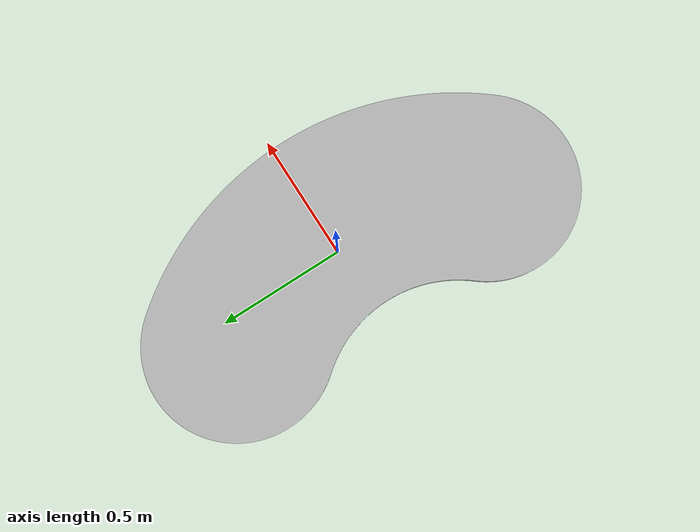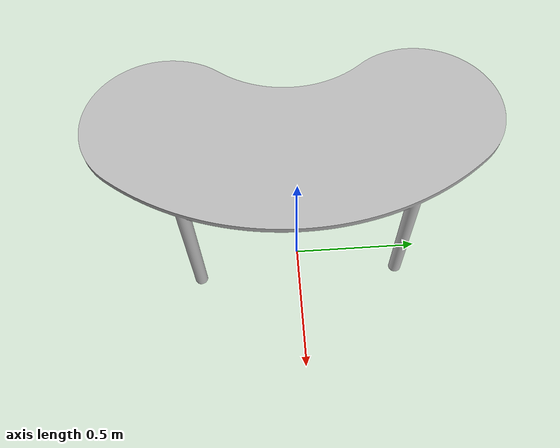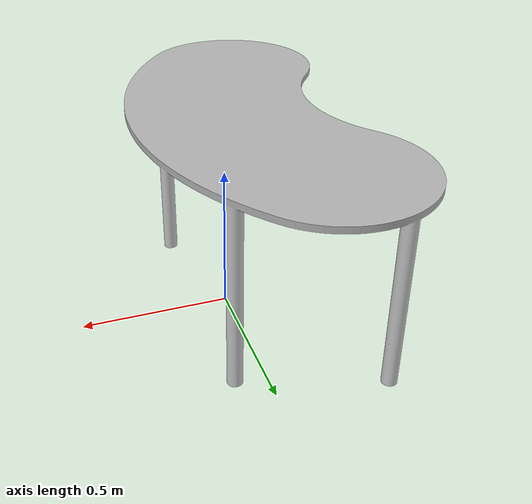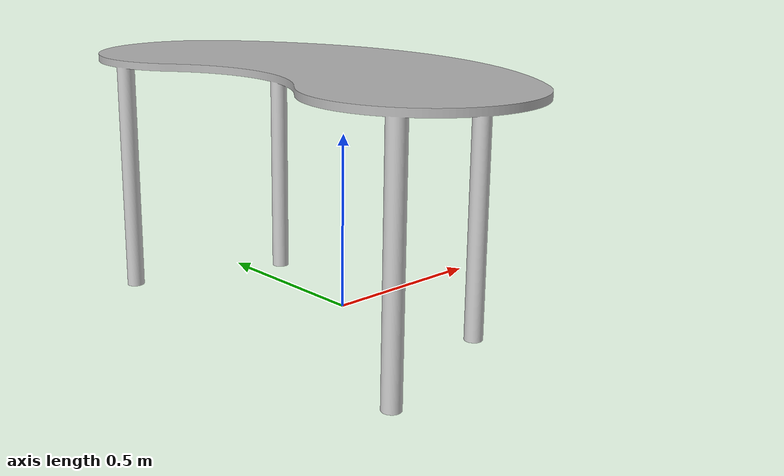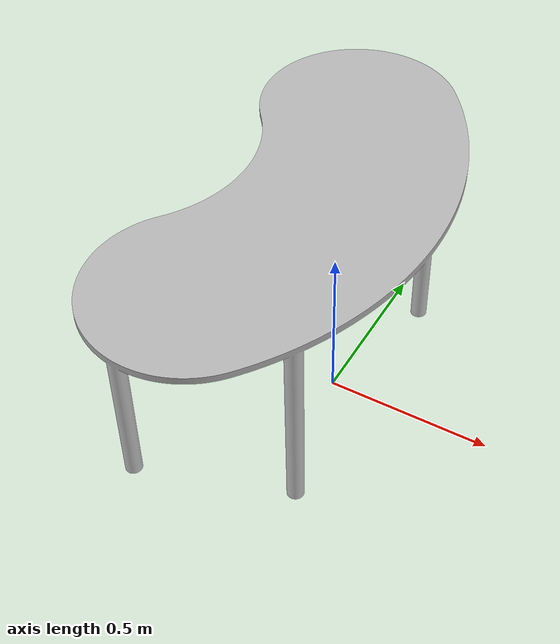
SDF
<sdf version='1.4'>
  <!-- Draw Model -->
  <model name='desk'>
    <static>true</static>
    <link name="desk">
      <collision name="collision">
        <geometry>
          <mesh>
            <uri>model://desk/meshes/STL/desk.stl</uri>
          </mesh>
        </geometry>
      </collision>

      <visual name="visual">
        <geometry>
          <mesh>
            <uri>model://desk/meshes/DAE/desk.dae</uri>
          </mesh>
        </geometry>
      </visual>
    </link>
  </model>
</sdf>
